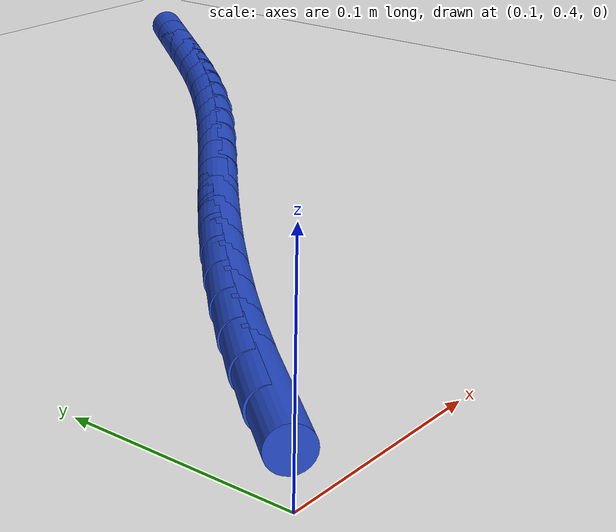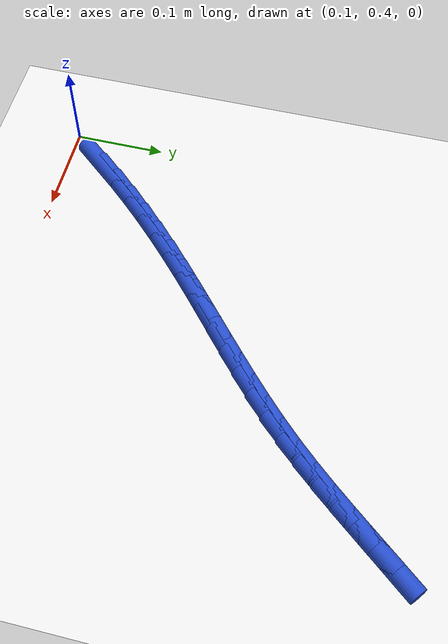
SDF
<sdf version="1.6">
 <world name="default">
  <model name="ground_plane">
   <static>1</static>
   <link name="link">
    <collision name="collision">
     <geometry><plane><normal>0 0 1</normal><size>100 100</size></plane></geometry>
     <surface><friction><ode><mu>100</mu><mu2>50</mu2></ode></friction></surface>
    </collision>
    <visual name="visual">
     <cast_shadows>0</cast_shadows>
     <geometry><plane><normal>0 0 1</normal><size>100 100</size></plane></geometry>
     <material>
      <script><uri>file://media/materials/scripts/gazebo.material</uri><name>Gazebo/WhiteGlow</name></script>
     </material>
    </visual>
   </link>
  </model>
  <model name="line">
   <link name="link_17">
    <pose>0.14323156771261675 0.4454702491266208 0.01 0 1.57 0.8693429496021429</pose>
    <collision name="collision">
     <geometry><cylinder><radius>0.01</radius><length>0.08</length></cylinder></geometry>
    </collision>
    <visual name="visual">
     <material>
      <script><name>Gazebo/Blue</name><uri>file://media/materials/scripts/gazebo.material</uri></script>
     </material>
     <geometry><cylinder><radius>0.01</radius><length>0.08</length></cylinder></geometry>
    </visual>
   </link>
   <link name="link_18">
    <pose>0.16176397275535612 0.4674079073697562 0.01 0 1.57 0.8397101017526116</pose>
    <collision name="collision">
     <geometry><cylinder><radius>0.01</radius><length>0.08</length></cylinder></geometry>
    </collision>
    <visual name="visual">
     <material>
      <script><name>Gazebo/Blue</name><uri>file://media/materials/scripts/gazebo.material</uri></script>
     </material>
     <geometry><cylinder><radius>0.01</radius><length>0.08</length></cylinder></geometry>
    </visual>
   </link>
   <link name="link_19">
    <pose>0.18100145463922784 0.4888573503757278 0.01 0 1.57 0.8128090061743278</pose>
    <collision name="collision">
     <geometry><cylinder><radius>0.01</radius><length>0.08</length></cylinder></geometry>
    </collision>
    <visual name="visual">
     <material>
      <script><name>Gazebo/Blue</name><uri>file://media/materials/scripts/gazebo.material</uri></script>
     </material>
     <geometry><cylinder><radius>0.01</radius><length>0.08</length></cylinder></geometry>
    </visual>
   </link>
   <link name="link_20">
    <pose>0.20085022954777282 0.5098252243227305 0.01 0 1.57 0.7884982347308077</pose>
    <collision name="collision">
     <geometry><cylinder><radius>0.01</radius><length>0.08</length></cylinder></geometry>
    </collision>
    <visual name="visual">
     <material>
      <script><name>Gazebo/Blue</name><uri>file://media/materials/scripts/gazebo.material</uri></script>
     </material>
     <geometry><cylinder><radius>0.01</radius><length>0.08</length></cylinder></geometry>
    </visual>
   </link>
   <link name="link_21">
    <pose>0.22121651366453216 0.530318175388959 0.01 0 1.57 0.7666488950104318</pose>
    <collision name="collision">
     <geometry><cylinder><radius>0.01</radius><length>0.08</length></cylinder></geometry>
    </collision>
    <visual name="visual">
     <material>
      <script><name>Gazebo/Blue</name><uri>file://media/materials/scripts/gazebo.material</uri></script>
     </material>
     <geometry><cylinder><radius>0.01</radius><length>0.08</length></cylinder></geometry>
    </visual>
   </link>
   <link name="link_22">
    <pose>0.24200652317304677 0.550342849752608 0.01 0 1.57 0.7471494016440369</pose>
    <collision name="collision">
     <geometry><cylinder><radius>0.01</radius><length>0.08</length></cylinder></geometry>
    </collision>
    <visual name="visual">
     <material>
      <script><name>Gazebo/Blue</name><uri>file://media/materials/scripts/gazebo.material</uri></script>
     </material>
     <geometry><cylinder><radius>0.01</radius><length>0.08</length></cylinder></geometry>
    </visual>
   </link>
   <link name="link_23">
    <pose>0.2631264561891999 0.569905947927536 0.01 0 1.57 0.7309272539567916</pose>
    <collision name="collision">
     <geometry><cylinder><radius>0.01</radius><length>0.08</length></cylinder></geometry>
    </collision>
    <visual name="visual">
     <material>
      <script><name>Gazebo/Blue</name><uri>file://media/materials/scripts/gazebo.material</uri></script>
     </material>
     <geometry><cylinder><radius>0.01</radius><length>0.08</length></cylinder></geometry>
    </visual>
   </link>
   <link name="link_24">
    <pose>0.28447242442853177 0.5890445037037293 0.01 0 1.57 0.7206941612121894</pose>
    <collision name="collision">
     <geometry><cylinder><radius>0.01</radius><length>0.08</length></cylinder></geometry>
    </collision>
    <visual name="visual">
     <material>
      <script><name>Gazebo/Blue</name><uri>file://media/materials/scripts/gazebo.material</uri></script>
     </material>
     <geometry><cylinder><radius>0.01</radius><length>0.08</length></cylinder></geometry>
    </visual>
   </link>
   <link name="link_25">
    <pose>0.30591368959123283 0.6078762981052732 0.01 0 1.57 0.7169711343749038</pose>
    <collision name="collision">
     <geometry><cylinder><radius>0.01</radius><length>0.08</length></cylinder></geometry>
    </collision>
    <visual name="visual">
     <material>
      <script><name>Gazebo/Blue</name><uri>file://media/materials/scripts/gazebo.material</uri></script>
     </material>
     <geometry><cylinder><radius>0.01</radius><length>0.08</length></cylinder></geometry>
    </visual>
   </link>
   <link name="link_26">
    <pose>0.3273150946372849 0.6265324008283589 0.01 0 1.57 0.7198534562208936</pose>
    <collision name="collision">
     <geometry><cylinder><radius>0.01</radius><length>0.08</length></cylinder></geometry>
    </collision>
    <visual name="visual">
     <material>
      <script><name>Gazebo/Blue</name><uri>file://media/materials/scripts/gazebo.material</uri></script>
     </material>
     <geometry><cylinder><radius>0.01</radius><length>0.08</length></cylinder></geometry>
    </visual>
   </link>
   <link name="link_27">
    <pose>0.3485414825266697 0.6451438815691772 0.01 0 1.57 0.7294592777876213</pose>
    <collision name="collision">
     <geometry><cylinder><radius>0.01</radius><length>0.08</length></cylinder></geometry>
    </collision>
    <visual name="visual">
     <material>
      <script><name>Gazebo/Blue</name><uri>file://media/materials/scripts/gazebo.material</uri></script>
     </material>
     <geometry><cylinder><radius>0.01</radius><length>0.08</length></cylinder></geometry>
    </visual>
   </link>
   <link name="link_28">
    <pose>0.3694576962193693 0.6638418100239193 0.01 0 1.57 0.7459268850918639</pose>
    <collision name="collision">
     <geometry><cylinder><radius>0.01</radius><length>0.08</length></cylinder></geometry>
    </collision>
    <visual name="visual">
     <material>
      <script><name>Gazebo/Blue</name><uri>file://media/materials/scripts/gazebo.material</uri></script>
     </material>
     <geometry><cylinder><radius>0.01</radius><length>0.08</length></cylinder></geometry>
    </visual>
   </link>
   <link name="link_29">
    <pose>0.38992857867536546 0.6827572558887759 0.01 0 1.57 0.7694023276488269</pose>
    <collision name="collision">
     <geometry><cylinder><radius>0.01</radius><length>0.08</length></cylinder></geometry>
    </collision>
    <visual name="visual">
     <material>
      <script><name>Gazebo/Blue</name><uri>file://media/materials/scripts/gazebo.material</uri></script>
     </material>
     <geometry><cylinder><radius>0.01</radius><length>0.08</length></cylinder></geometry>
    </visual>
   </link>
   <link name="link_30">
    <pose>0.40981897285464003 0.7020212888599382 0.01 0 1.57 0.7999702303431748</pose>
    <collision name="collision">
     <geometry><cylinder><radius>0.01</radius><length>0.08</length></cylinder></geometry>
    </collision>
    <visual name="visual">
     <material>
      <script><name>Gazebo/Blue</name><uri>file://media/materials/scripts/gazebo.material</uri></script>
     </material>
     <geometry><cylinder><radius>0.01</radius><length>0.08</length></cylinder></geometry>
    </visual>
   </link>
   <link name="link_31">
    <pose>0.4289948070415806 0.7217642910821758 0.01 0 1.57 0.8331201504467286</pose>
    <collision name="collision">
     <geometry><cylinder><radius>0.01</radius><length>0.08</length></cylinder></geometry>
    </collision>
    <visual name="visual">
     <material>
      <script><name>Gazebo/Blue</name><uri>file://media/materials/scripts/gazebo.material</uri></script>
     </material>
     <geometry><cylinder><radius>0.01</radius><length>0.08</length></cylinder></geometry>
    </visual>
   </link>
   <link name="link_32">
    <pose>0.44742975217353964 0.7420483898874648 0.01 0 1.57 0.8602502442624418</pose>
    <collision name="collision">
     <geometry><cylinder><radius>0.01</radius><length>0.08</length></cylinder></geometry>
    </collision>
    <visual name="visual">
     <material>
      <script><name>Gazebo/Blue</name><uri>file://media/materials/scripts/gazebo.material</uri></script>
     </material>
     <geometry><cylinder><radius>0.01</radius><length>0.08</length></cylinder></geometry>
    </visual>
   </link>
   <link name="link_33">
    <pose>0.46529511399538026 0.7628105112467868 0.01 0 1.57 0.880203145737088</pose>
    <collision name="collision">
     <geometry><cylinder><radius>0.01</radius><length>0.08</length></cylinder></geometry>
    </collision>
    <visual name="visual">
     <material>
      <script><name>Gazebo/Blue</name><uri>file://media/materials/scripts/gazebo.material</uri></script>
     </material>
     <geometry><cylinder><radius>0.01</radius><length>0.08</length></cylinder></geometry>
    </visual>
   </link>
   <link name="link_34">
    <pose>0.4827833637068355 0.7839741728464735 0.01 0 1.57 0.8928675080751223</pose>
    <collision name="collision">
     <geometry><cylinder><radius>0.01</radius><length>0.08</length></cylinder></geometry>
    </collision>
    <visual name="visual">
     <material>
      <script><name>Gazebo/Blue</name><uri>file://media/materials/scripts/gazebo.material</uri></script>
     </material>
     <geometry><cylinder><radius>0.01</radius><length>0.08</length></cylinder></geometry>
    </visual>
   </link>
   <link name="link_35">
    <pose>0.5000869725076386 0.8054628923728573 0.01 0 1.57 0.8982583832611836</pose>
    <collision name="collision">
     <geometry><cylinder><radius>0.01</radius><length>0.08</length></cylinder></geometry>
    </collision>
    <visual name="visual">
     <material>
      <script><name>Gazebo/Blue</name><uri>file://media/materials/scripts/gazebo.material</uri></script>
     </material>
     <geometry><cylinder><radius>0.01</radius><length>0.08</length></cylinder></geometry>
    </visual>
   </link>
   <link name="link_36">
    <pose>0.5173984115975223 0.8272001875122692 0.01 0 1.57 0.8964944354219363</pose>
    <collision name="collision">
     <geometry><cylinder><radius>0.01</radius><length>0.08</length></cylinder></geometry>
    </collision>
    <visual name="visual">
     <material>
      <script><name>Gazebo/Blue</name><uri>file://media/materials/scripts/gazebo.material</uri></script>
     </material>
     <geometry><cylinder><radius>0.01</radius><length>0.08</length></cylinder></geometry>
    </visual>
   </link>
  </model>
 </world>
</sdf>
